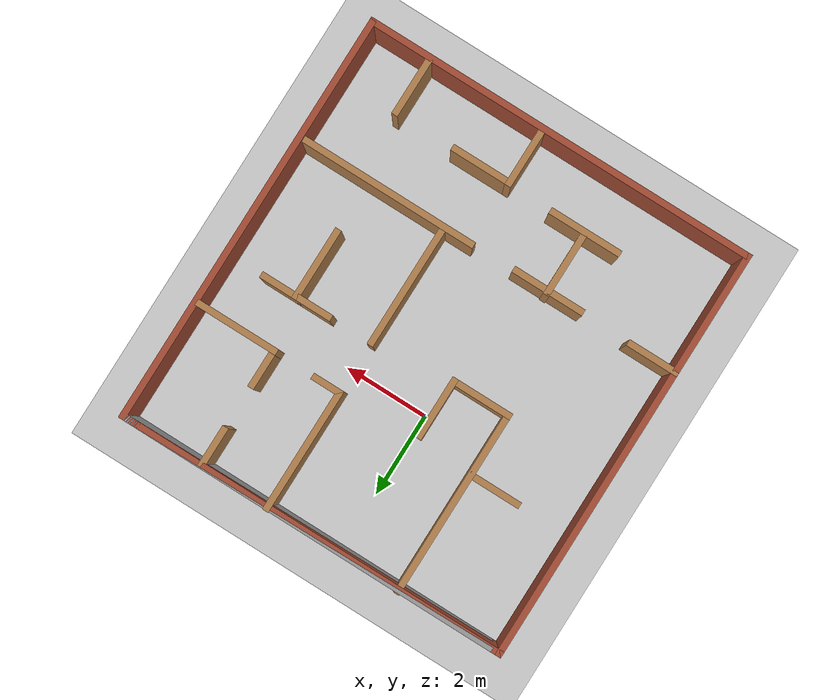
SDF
<sdf version="1.6">
 <world name="default">
  <light name="sun" type="directional">
   <pose>0 0 10 0 -0 0</pose>
   <diffuse>0.8 0.8 0.8 1</diffuse>
   <specular>0.2 0.2 0.2 1</specular>
   <attenuation>
    <range>1000</range>
    <constant>0.9</constant>
    <linear>0.01</linear>
    <quadratic>0.001</quadratic>
   </attenuation>
   <direction>-0.5 0.1 -0.9</direction>
  </light>
  <model name="ground_plane">
   <static>1</static>
   <link name="link">
    <collision name="collision">
     <geometry><plane><normal>0 0 1</normal><size>100 100</size></plane></geometry>
     <surface>
      <contact><collide_bitmask>65535</collide_bitmask></contact>
      <friction><ode><mu>100</mu><mu2>50</mu2></ode></friction>
     </surface>
    </collision>
    <visual name="visual">
     <cast_shadows>0</cast_shadows>
     <geometry><plane><normal>0 0 1</normal><size>100 100</size></plane></geometry>
     <material>
      <script><uri>file://media/materials/scripts/gazebo.material</uri><name>Gazebo/Grey</name></script>
     </material>
    </visual>
   </link>
  </model>
  <gravity>0 0 -9.8</gravity>
  <magnetic_field>6e-06 2.3e-05 -4.2e-05</magnetic_field>
  <atmosphere type="adiabatic"/>
  <physics name="default_physics" default="0" type="ode">
   <max_step_size>0.001</max_step_size>
   <real_time_factor>1</real_time_factor>
   <real_time_update_rate>1000</real_time_update_rate>
  </physics>
  <scene><ambient>0.4 0.4 0.4 1</ambient><background>0.7 0.7 0.7 1</background><shadows>1</shadows></scene>
  <audio><device>default</device></audio>
  <spherical_coordinates>
   <surface_model>EARTH_WGS84</surface_model>
   <latitude_deg>0</latitude_deg>
   <longitude_deg>0</longitude_deg>
   <elevation>0</elevation>
   <heading_deg>0</heading_deg>
  </spherical_coordinates>
  <model name="10x9m_test">
   <pose>0.681346 -1.52461 0 0 -0 0</pose>
   <link name="Wall_0">
    <collision name="Wall_0_Collision">
     <geometry><box><size>9.25 0.15 2.5</size></box></geometry>
     <pose>0 0 1.25 0 -0 0</pose>
    </collision>
    <visual name="Wall_0_Visual">
     <pose>0 0 1.25 0 -0 0</pose>
     <geometry><box><size>9.25 0.15 2.5</size></box></geometry>
     <material>
      <script><uri>file://media/materials/scripts/gazebo.material</uri><name>Gazebo/Grey</name></script>
      <ambient>1 1 1 1</ambient>
     </material>
     <meta><layer>0</layer></meta>
    </visual>
    <pose>0.125 4.91269 0 0 -0 0</pose>
   </link>
   <link name="Wall_1">
    <collision name="Wall_1_Collision">
     <geometry><box><size>10 0.15 2.5</size></box></geometry>
     <pose>0 0 1.25 0 -0 0</pose>
    </collision>
    <visual name="Wall_1_Visual">
     <pose>0 0 1.25 0 -0 0</pose>
     <geometry><box><size>10 0.15 2.5</size></box></geometry>
     <material>
      <script><uri>file://media/materials/scripts/gazebo.material</uri><name>Gazebo/Bricks</name></script>
      <ambient>1 1 1 1</ambient>
     </material>
     <meta><layer>0</layer></meta>
    </visual>
    <pose>4.675 -0.012312 0 0 -0 -1.5708</pose>
   </link>
   <link name="Wall_10">
    <collision name="Wall_10_Collision">
     <geometry><box><size>3 0.15 2.5</size></box></geometry>
     <pose>0 0 1.25 0 -0 0</pose>
    </collision>
    <visual name="Wall_10_Visual">
     <pose>0 0 1.25 0 -0 0</pose>
     <geometry><box><size>3 0.15 2.5</size></box></geometry>
     <material>
      <script><uri>file://media/materials/scripts/gazebo.material</uri><name>Gazebo/Wood</name></script>
      <ambient>1 1 1 1</ambient>
     </material>
     <meta><layer>0</layer></meta>
    </visual>
    <pose>1.08086 3.50431 0 0 -0 -1.5708</pose>
   </link>
   <link name="Wall_11">
    <collision name="Wall_11_Collision">
     <geometry><box><size>0.75 0.15 2.5</size></box></geometry>
     <pose>0 0 1.25 0 -0 0</pose>
    </collision>
    <visual name="Wall_11_Visual">
     <pose>0 0 1.25 0 -0 0</pose>
     <geometry><box><size>0.75 0.15 2.5</size></box></geometry>
     <material>
      <script><uri>file://media/materials/scripts/gazebo.material</uri><name>Gazebo/Wood</name></script>
      <ambient>1 1 1 1</ambient>
     </material>
     <meta><layer>0</layer></meta>
    </visual>
    <pose>1.38086 2.07931 0 0 -0 0</pose>
   </link>
   <link name="Wall_13">
    <collision name="Wall_13_Collision">
     <geometry><box><size>1 0.15 2.5</size></box></geometry>
     <pose>0 0 1.25 0 -0 0</pose>
    </collision>
    <visual name="Wall_13_Visual">
     <pose>0 0 1.25 0 -0 0</pose>
     <geometry><box><size>1 0.15 2.5</size></box></geometry>
     <material>
      <script><uri>file://media/materials/scripts/gazebo.material</uri><name>Gazebo/Wood</name></script>
      <ambient>1 1 1 1</ambient>
     </material>
     <meta><layer>0</layer></meta>
    </visual>
    <pose>2.72313 4.45805 0 0 -0 -1.5708</pose>
   </link>
   <link name="Wall_15">
    <collision name="Wall_15_Collision">
     <geometry><box><size>1 0.15 2.5</size></box></geometry>
     <pose>0 0 1.25 0 -0 0</pose>
    </collision>
    <visual name="Wall_15_Visual">
     <pose>0 0 1.25 0 -0 0</pose>
     <geometry><box><size>1 0.15 2.5</size></box></geometry>
     <material>
      <script><uri>file://media/materials/scripts/gazebo.material</uri><name>Gazebo/Wood</name></script>
      <ambient>1 1 1 1</ambient>
     </material>
     <meta><layer>0</layer></meta>
    </visual>
    <pose>2.72313 2.48611 0 0 -0 1.5708</pose>
   </link>
   <link name="Wall_17">
    <collision name="Wall_17_Collision">
     <geometry><box><size>2 0.15 2.5</size></box></geometry>
     <pose>0 0 1.25 0 -0 0</pose>
    </collision>
    <visual name="Wall_17_Visual">
     <pose>0 0 1.25 0 -0 0</pose>
     <geometry><box><size>2 0.15 2.5</size></box></geometry>
     <material>
      <script><uri>file://media/materials/scripts/gazebo.material</uri><name>Gazebo/Wood</name></script>
      <ambient>1 1 1 1</ambient>
     </material>
     <meta><layer>0</layer></meta>
    </visual>
    <pose>3.64813 2.06111 0 0 -0 0</pose>
   </link>
   <link name="Wall_19">
    <collision name="Wall_19_Collision">
     <geometry><box><size>1.25 0.15 2.5</size></box></geometry>
     <pose>0 0 1.25 0 -0 0</pose>
    </collision>
    <visual name="Wall_19_Visual">
     <pose>0 0 1.25 0 -0 0</pose>
     <geometry><box><size>1.25 0.15 2.5</size></box></geometry>
     <material>
      <script><uri>file://media/materials/scripts/gazebo.material</uri><name>Gazebo/Wood</name></script>
      <ambient>1 1 1 1</ambient>
     </material>
     <meta><layer>0</layer></meta>
    </visual>
    <pose>-4.11941 -2.05508 0 0 -0 0</pose>
   </link>
   <link name="Wall_2">
    <collision name="Wall_2_Collision">
     <geometry><box><size>9.5 0.15 2.5</size></box></geometry>
     <pose>0 0 1.25 0 -0 0</pose>
    </collision>
    <visual name="Wall_2_Visual">
     <pose>0 0 1.25 0 -0 0</pose>
     <geometry><box><size>9.5 0.15 2.5</size></box></geometry>
     <material>
      <script><uri>file://media/materials/scripts/gazebo.material</uri><name>Gazebo/Bricks</name></script>
      <ambient>1 1 1 1</ambient>
     </material>
     <meta><layer>0</layer></meta>
    </visual>
    <pose>-0 -4.93731 0 0 -0 3.14159</pose>
   </link>
   <link name="Wall_21">
    <collision name="Wall_21_Collision">
     <geometry><box><size>1.75 0.15 2.5</size></box></geometry>
     <pose>0 0 1.25 0 -0 0</pose>
    </collision>
    <visual name="Wall_21_Visual">
     <pose>0 0 1.25 0 -0 0</pose>
     <geometry><box><size>1.75 0.15 2.5</size></box></geometry>
     <material>
      <script><uri>file://media/materials/scripts/gazebo.material</uri><name>Gazebo/Wood</name></script>
      <ambient>1 1 1 1</ambient>
     </material>
     <meta><layer>0</layer></meta>
    </visual>
    <pose>-1.50199 -2.08168 0 0 -0 0</pose>
   </link>
   <link name="Wall_23">
    <collision name="Wall_23_Collision">
     <geometry><box><size>4.25 0.15 2.5</size></box></geometry>
     <pose>0 0 1.25 0 -0 0</pose>
    </collision>
    <visual name="Wall_23_Visual">
     <pose>0 0 1.25 0 -0 0</pose>
     <geometry><box><size>4.25 0.15 2.5</size></box></geometry>
     <material>
      <script><uri>file://media/materials/scripts/gazebo.material</uri><name>Gazebo/Wood</name></script>
      <ambient>1 1 1 1</ambient>
     </material>
     <meta><layer>0</layer></meta>
    </visual>
    <pose>2.46123 -2.05508 0 0 -0 0</pose>
   </link>
   <link name="Wall_25">
    <collision name="Wall_25_Collision">
     <geometry><box><size>1.75 0.15 2.5</size></box></geometry>
     <pose>0 0 1.25 0 -0 0</pose>
    </collision>
    <visual name="Wall_25_Visual">
     <pose>0 0 1.25 0 -0 0</pose>
     <geometry><box><size>1.75 0.15 2.5</size></box></geometry>
     <material>
      <script><uri>file://media/materials/scripts/gazebo.material</uri><name>Gazebo/Wood</name></script>
      <ambient>1 1 1 1</ambient>
     </material>
     <meta><layer>0</layer></meta>
    </visual>
    <pose>2.93626 0.844337 0 0 -0 3.14159</pose>
   </link>
   <link name="Wall_27">
    <collision name="Wall_27_Collision">
     <geometry><box><size>3 0.15 2.5</size></box></geometry>
     <pose>0 0 1.25 0 -0 0</pose>
    </collision>
    <visual name="Wall_27_Visual">
     <pose>0 0 1.25 0 -0 0</pose>
     <geometry><box><size>3 0.15 2.5</size></box></geometry>
     <material>
      <script><uri>file://media/materials/scripts/gazebo.material</uri><name>Gazebo/Wood</name></script>
      <ambient>1 1 1 1</ambient>
     </material>
     <meta><layer>0</layer></meta>
    </visual>
    <pose>1.07624 -0.607263 0 0 -0 -1.5708</pose>
   </link>
   <link name="Wall_29">
    <collision name="Wall_29_Collision">
     <geometry><box><size>1.75 0.15 2.5</size></box></geometry>
     <pose>0 0 1.25 0 -0 0</pose>
    </collision>
    <visual name="Wall_29_Visual">
     <pose>0 0 1.25 0 -0 0</pose>
     <geometry><box><size>1.75 0.15 2.5</size></box></geometry>
     <material>
      <script><uri>file://media/materials/scripts/gazebo.material</uri><name>Gazebo/Wood</name></script>
      <ambient>1 1 1 1</ambient>
     </material>
     <meta><layer>0</layer></meta>
    </visual>
    <pose>2.93825 0.044337 0 0 -0 -1.5708</pose>
   </link>
   <link name="Wall_3">
    <collision name="Wall_3_Collision">
     <geometry><box><size>10 0.15 2.5</size></box></geometry>
     <pose>0 0 1.25 0 -0 0</pose>
    </collision>
    <visual name="Wall_3_Visual">
     <pose>0 0 1.25 0 -0 0</pose>
     <geometry><box><size>10 0.15 2.5</size></box></geometry>
     <material>
      <script><uri>file://media/materials/scripts/gazebo.material</uri><name>Gazebo/Bricks</name></script>
      <ambient>1 1 1 1</ambient>
     </material>
     <meta><layer>0</layer></meta>
    </visual>
    <pose>-4.675 -0.012312 0 0 -0 1.5708</pose>
   </link>
   <link name="Wall_31">
    <collision name="Wall_31_Collision">
     <geometry><box><size>1.5 0.15 2.5</size></box></geometry>
     <pose>0 0 1.25 0 -0 0</pose>
    </collision>
    <visual name="Wall_31_Visual">
     <pose>0 0 1.25 0 -0 0</pose>
     <geometry><box><size>1.5 0.15 2.5</size></box></geometry>
     <material>
      <script><uri>file://media/materials/scripts/gazebo.material</uri><name>Gazebo/Wood</name></script>
      <ambient>1 1 1 1</ambient>
     </material>
     <meta><layer>0</layer></meta>
    </visual>
    <pose>0.411232 -4.25291 0 0 -0 1.5708</pose>
   </link>
   <link name="Wall_32">
    <collision name="Wall_32_Collision">
     <geometry><box><size>1.5 0.15 2.5</size></box></geometry>
     <pose>0 0 1.25 0 -0 0</pose>
    </collision>
    <visual name="Wall_32_Visual">
     <pose>0 0 1.25 0 -0 0</pose>
     <geometry><box><size>1.5 0.15 2.5</size></box></geometry>
     <material>
      <script><uri>file://media/materials/scripts/gazebo.material</uri><name>Gazebo/Wood</name></script>
      <ambient>1 1 1 1</ambient>
     </material>
     <meta><layer>0</layer></meta>
    </visual>
    <pose>1.08623 -3.57791 0 0 -0 0</pose>
   </link>
   <link name="Wall_34">
    <collision name="Wall_34_Collision">
     <geometry><box><size>1.5 0.15 2.5</size></box></geometry>
     <pose>0 0 1.25 0 -0 0</pose>
    </collision>
    <visual name="Wall_34_Visual">
     <pose>0 0 1.25 0 -0 0</pose>
     <geometry><box><size>1.5 0.15 2.5</size></box></geometry>
     <material>
      <script><uri>file://media/materials/scripts/gazebo.material</uri><name>Gazebo/Wood</name></script>
      <ambient>1 1 1 1</ambient>
     </material>
     <meta><layer>0</layer></meta>
    </visual>
    <pose>3.23085 -4.25291 0 0 -0 1.5708</pose>
   </link>
   <link name="Wall_36">
    <collision name="Wall_36_Collision">
     <geometry><box><size>1.75 0.15 2.5</size></box></geometry>
     <pose>0 0 1.25 0 -0 0</pose>
    </collision>
    <visual name="Wall_36_Visual">
     <pose>0 0 1.25 0 -0 0</pose>
     <geometry><box><size>1.75 0.15 2.5</size></box></geometry>
     <material>
      <script><uri>file://media/materials/scripts/gazebo.material</uri><name>Gazebo/Wood</name></script>
      <ambient>1 1 1 1</ambient>
     </material>
     <meta><layer>0</layer></meta>
    </visual>
    <pose>-1.50199 -3.5447 0 0 -0 0</pose>
   </link>
   <link name="Wall_38">
    <collision name="Wall_38_Collision">
     <geometry><box><size>1.5 0.15 2.5</size></box></geometry>
     <pose>0 0 1.25 0 -0 0</pose>
    </collision>
    <visual name="Wall_38_Visual">
     <pose>0 0 1.25 0 -0 0</pose>
     <geometry><box><size>1.5 0.15 2.5</size></box></geometry>
     <material>
      <script><uri>file://media/materials/scripts/gazebo.material</uri><name>Gazebo/Wood</name></script>
      <ambient>1 1 1 1</ambient>
     </material>
     <meta><layer>0</layer></meta>
    </visual>
    <pose>-1.50398 -2.73008 0 0 -0 -1.5708</pose>
   </link>
   <link name="Wall_4">
    <collision name="Wall_4_Collision">
     <geometry><box><size>9.5 0.15 2.5</size></box></geometry>
     <pose>0 0 1.25 0 -0 0</pose>
    </collision>
    <visual name="Wall_4_Visual">
     <pose>0 0 1.25 0 -0 0</pose>
     <geometry><box><size>9.5 0.15 2.5</size></box></geometry>
     <material>
      <script><uri>file://media/materials/scripts/gazebo.material</uri><name>Gazebo/Bricks</name></script>
      <ambient>1 1 1 1</ambient>
     </material>
     <meta><layer>0</layer></meta>
    </visual>
    <pose>-0 4.91269 0 0 -0 0</pose>
   </link>
   <link name="Wall_40">
    <collision name="Wall_40_Collision">
     <geometry><box><size>1.25 0.15 2.5</size></box></geometry>
     <pose>0 0 1.25 0 -0 0</pose>
    </collision>
    <visual name="Wall_40_Visual">
     <pose>0 0 1.25 0 -0 0</pose>
     <geometry><box><size>1.25 0.15 2.5</size></box></geometry>
     <material>
      <script><uri>file://media/materials/scripts/gazebo.material</uri><name>Gazebo/Wood</name></script>
      <ambient>1 1 1 1</ambient>
     </material>
     <meta><layer>0</layer></meta>
    </visual>
    <pose>-2.77219 2.06795 0 0 -0 3.14159</pose>
   </link>
   <link name="Wall_6">
    <collision name="Wall_6_Collision">
     <geometry><box><size>4.5 0.15 2.5</size></box></geometry>
     <pose>0 0 1.25 0 -0 0</pose>
    </collision>
    <visual name="Wall_6_Visual">
     <pose>0 0 1.25 0 -0 0</pose>
     <geometry><box><size>4.5 0.15 2.5</size></box></geometry>
     <material>
      <script><uri>file://media/materials/scripts/gazebo.material</uri><name>Gazebo/Wood</name></script>
      <ambient>1 1 1 1</ambient>
     </material>
     <meta><layer>0</layer></meta>
    </visual>
    <pose>-2.17802 2.76231 0 0 -0 -1.5708</pose>
   </link>
   <link name="Wall_7">
    <collision name="Wall_7_Collision">
     <geometry><box><size>1.5 0.15 2.5</size></box></geometry>
     <pose>0 0 1.25 0 -0 0</pose>
    </collision>
    <visual name="Wall_7_Visual">
     <pose>0 0 1.25 0 -0 0</pose>
     <geometry><box><size>1.5 0.15 2.5</size></box></geometry>
     <material>
      <script><uri>file://media/materials/scripts/gazebo.material</uri><name>Gazebo/Wood</name></script>
      <ambient>1 1 1 1</ambient>
     </material>
     <meta><layer>0</layer></meta>
    </visual>
    <pose>-1.50302 0.587312 0 0 -0 0</pose>
   </link>
   <link name="Wall_8">
    <collision name="Wall_8_Collision">
     <geometry><box><size>1.5 0.15 2.5</size></box></geometry>
     <pose>0 0 1.25 0 -0 0</pose>
    </collision>
    <visual name="Wall_8_Visual">
     <pose>0 0 1.25 0 -0 0</pose>
     <geometry><box><size>1.5 0.15 2.5</size></box></geometry>
     <material>
      <script><uri>file://media/materials/scripts/gazebo.material</uri><name>Gazebo/Wood</name></script>
      <ambient>1 1 1 1</ambient>
     </material>
     <meta><layer>0</layer></meta>
    </visual>
    <pose>-0.828021 1.26231 0 0 -0 1.5708</pose>
   </link>
   <static>1</static>
  </model>
 </world>
</sdf>
